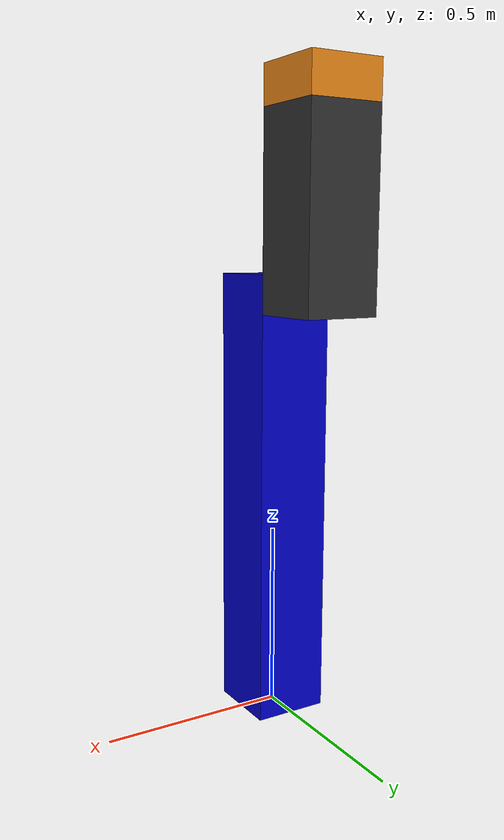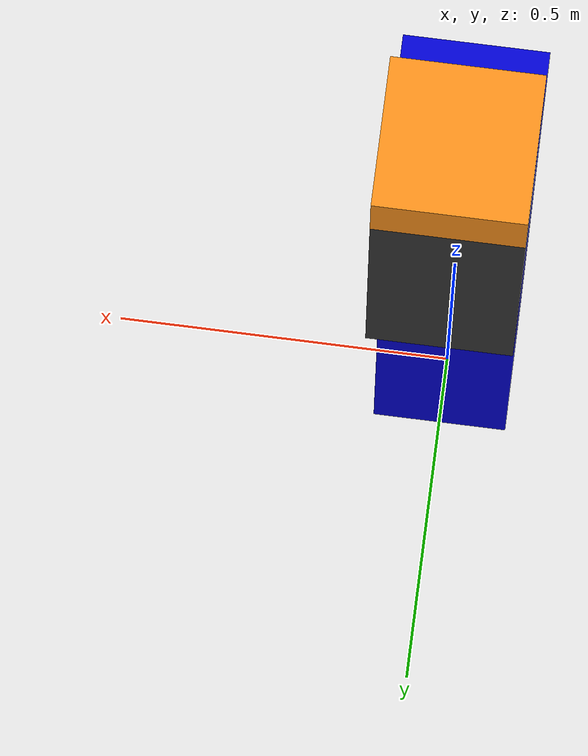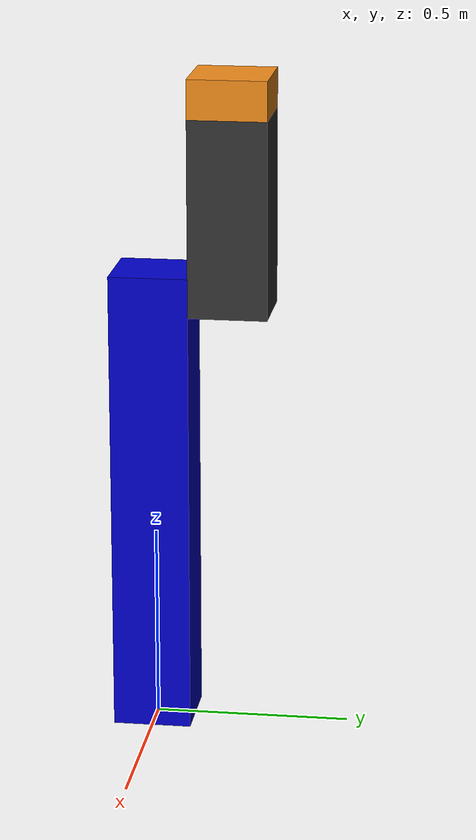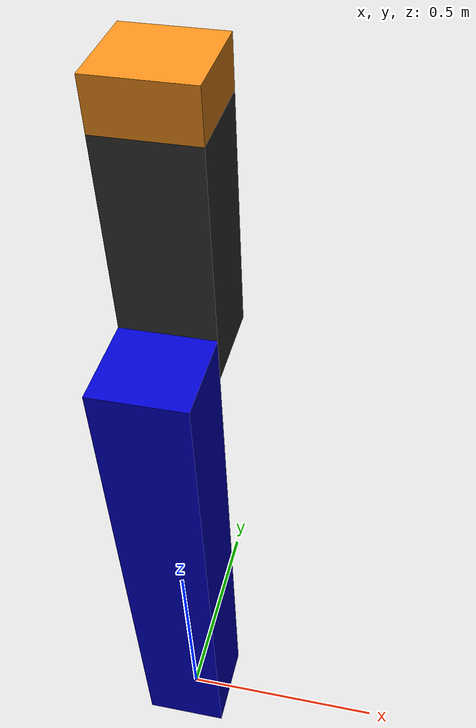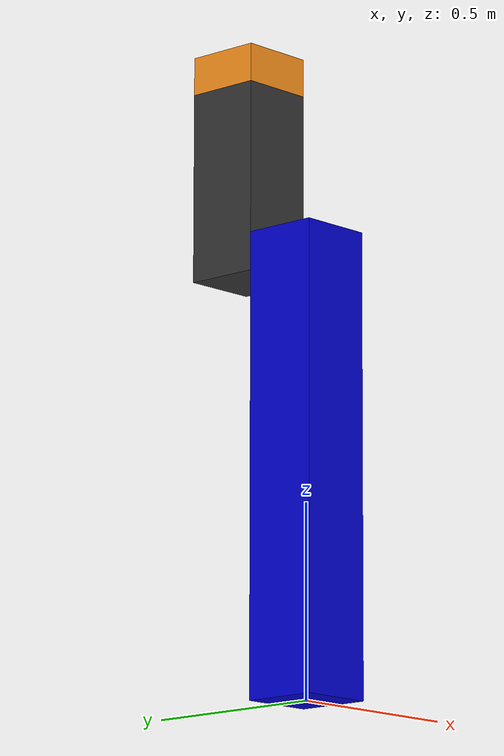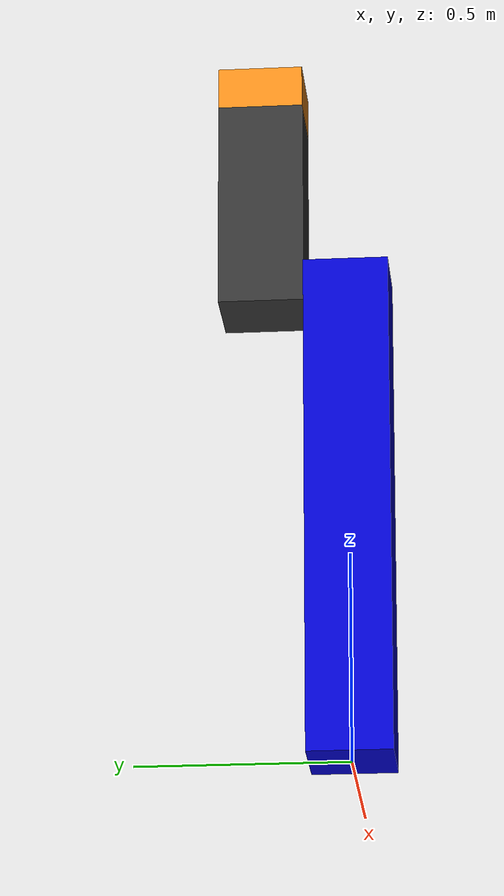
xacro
<?xml version="1.0"?>

<robot name="sensor" xmlns:xacro="http://www.ros.org/wiki/xacro">
    <xacro:property name="sensor_name" value="imu" />
    <xacro:property name="height1" value="1.2" />
    <xacro:property name="height2" value="0.5" />
    <xacro:property name="width" value="0.2" />
    <xacro:property name="mass" value="1" />
    <xacro:property name="axel_offset" value="0.05" />
    <!-- Used for fixing robot to Gazebo 'base_link' -->
    <link name="world"/>

    <material name="blue">
        <color rgba="0.0 0.0 0.8 1.0"/>
    </material>

    <material name="grey">
        <color rgba="0.2 0.2 0.2 1.0"/>
    </material>

    <joint name="fixed" type="fixed">
        <parent link="world"/>
        <child link="link1"/>
    </joint>

    <!-- Base Link -->
    <link name="link1">
        <collision>
            <origin xyz="0 0 ${height1/2}" rpy="0 0 0"/>
            <geometry>
                <box size="${width} ${width} ${height1}"/>
            </geometry>
        </collision>

        <visual>
            <origin xyz="0 0 ${height1/2}" rpy="0 0 0"/>
            <geometry>
                <box size="${width} ${width} ${height1}"/>
            </geometry>
            <material name="blue"/>
        </visual>

        <inertial>
            <origin xyz="0 0 ${height1/2}" rpy="0 0 0"/>
            <mass value="${mass}"/>
            <inertia
            ixx="${mass / 12.0 * (width*width + height1*height1)}" ixy="0.0" ixz="0.0"
            iyy="${mass / 12.0 * (height1*height1 + width*width)}" iyz="0.0"
            izz="${mass / 12.0 * (width*width + width*width)}"/>
        </inertial>
    </link>

    <joint name="joint1" type="continuous">
        <parent link="link1"/>
        <child link="link2"/>
        <origin xyz="0 ${width} ${height1 - axel_offset}" rpy="0 0 0"/>
        <axis xyz="0 1 0"/>
        <dynamics damping="0.001"/>
    </joint>

    <!-- Middle Link -->
    <link name="link2">
        <collision>
            <origin xyz="0 0 ${height2/2 - axel_offset}" rpy="0 0 0"/>
            <geometry>
                <box size="${width} ${width} ${height2}"/>
            </geometry>
        </collision>

        <visual>
            <origin xyz="0 0 ${height2/2 - axel_offset}" rpy="0 0 0"/>
            <geometry>
                <box size="${width} ${width} ${height2}"/>
            </geometry>
            <material name="grey"/>
        </visual>

        <inertial>
            <origin xyz="0 0 ${height2/2 - axel_offset}" rpy="0 0 0"/>
            <mass value="${mass}"/>
            <inertia
            ixx="${mass / 12.0 * (width*width + height2*height2)}" ixy="0.0" ixz="0.0"
            iyy="${mass / 12.0 * (height2*height2 + width*width)}" iyz="0.0"
            izz="${mass / 12.0 * (width*width + width*width)}"/>
        </inertial>
    </link>

    <!-- sensor Link -->
    <link name="${sensor_name}_link">
        <collision>
            <origin xyz="0 0 ${height2+2*axel_offset - height2/5}" rpy="0 0 0"/>
            <geometry>
                <box size="${width} ${width} ${height2/5}"/>
            </geometry>
        </collision>

        <visual>
            <origin xyz="0 0 ${height2+2*axel_offset - height2/5}" rpy="0 0 0"/>
            <geometry>
                <box size="${width} ${width} ${height2/5}"/>
            </geometry>

        </visual>

        <inertial>
            <origin xyz="0 0 1" rpy="0 0 0"/>
            <mass value="1"/>
            <inertia
            ixx="1.0" ixy="0.0" ixz="0.0"
            iyy="1.0" iyz="0.0"
            izz="1.0"/>
        </inertial>
    </link>

    <joint name="joint2" type="fixed">
        <parent link="link2"/>
        <child link="${sensor_name}_link"/>
    </joint>

    <gazebo reference="link1">
        <material>Gazebo/Blue</material>
    </gazebo>

    <gazebo reference="link2">
        <material>Gazebo/Grey</material>
    </gazebo>

    <gazebo reference="${sensor_name}_link">
        <sensor type = "imu" name="${sensor_name}_sensor">
            <plugin name="imu_plugin" filename="libgazebo_ros_imu_sensor.so">
                <ros>
                    <namespace>/imu</namespace>
                    <remapping>~/out:=data</remapping>
                </ros>
                <initial_orientation_as_reference>false</initial_orientation_as_reference>
            </plugin>
            <always_on>true</always_on>
            <update_rate>100</update_rate>
            <visualize>true</visualize>
            <imu>
                <angular_velocity>
                    <x>
                    <noise type="gaussian">
                        <mean>0.0</mean>
                        <stddev>2e-4</stddev>
                        <bias_mean>0.0000075</bias_mean>
                        <bias_stddev>0.0000008</bias_stddev>
                    </noise>
                    </x>
                    <y>
                    <noise type="gaussian">
                        <mean>0.0</mean>
                        <stddev>2e-4</stddev>
                        <bias_mean>0.0000075</bias_mean>
                        <bias_stddev>0.0000008</bias_stddev>
                    </noise>
                    </y>
                    <z>
                    <noise type="gaussian">
                        <mean>0.0</mean>
                        <stddev>2e-4</stddev>
                        <bias_mean>0.0000075</bias_mean>
                        <bias_stddev>0.0000008</bias_stddev>
                    </noise>
                    </z>
                </angular_velocity>
                <linear_acceleration>
                    <x>
                    <noise type="gaussian">
                        <mean>0.0</mean>
                        <stddev>1.7e-2</stddev>
                        <bias_mean>0.1</bias_mean>
                        <bias_stddev>0.001</bias_stddev>
                    </noise>
                    </x>
                    <y>
                    <noise type="gaussian">
                        <mean>0.0</mean>
                        <stddev>1.7e-2</stddev>
                        <bias_mean>0.1</bias_mean>
                        <bias_stddev>0.001</bias_stddev>
                    </noise>
                    </y>
                    <z>
                    <noise type="gaussian">
                        <mean>0.0</mean>
                        <stddev>1.7e-2</stddev>
                        <bias_mean>0.1</bias_mean>
                        <bias_stddev>0.001</bias_stddev>
                    </noise>
                    </z>
                </linear_acceleration>
            </imu>
        </sensor>
        <material>Gazebo/Orange</material>
    </gazebo>

</robot>
